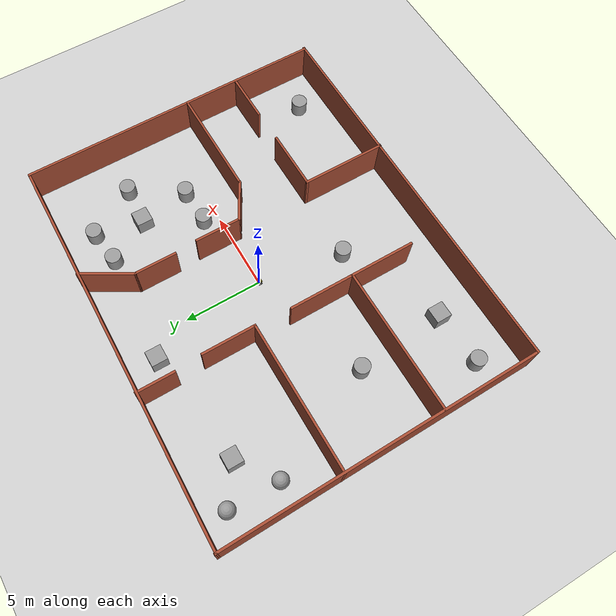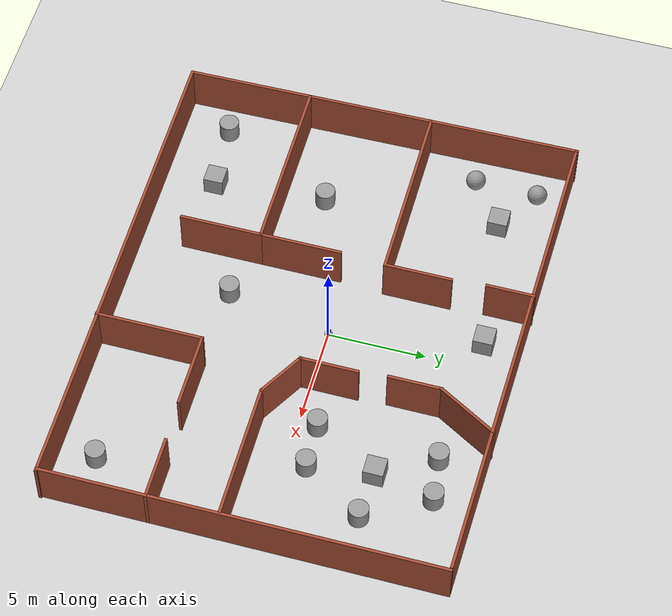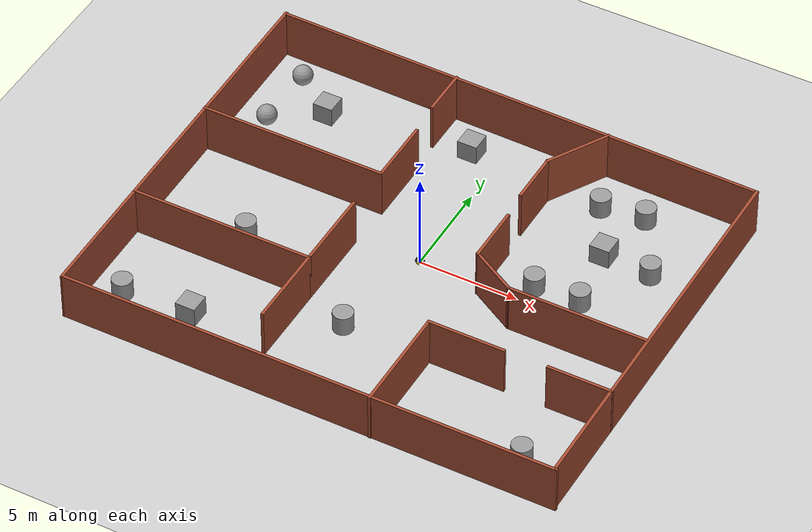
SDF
<sdf version="1.6">
 <world name="default">
  <light name="sun" type="directional">
   <pose>0 0 10 0 -0 0</pose>
   <diffuse>0.8 0.8 0.8 1</diffuse>
   <specular>0.2 0.2 0.2 1</specular>
   <attenuation>
    <range>1000</range>
    <constant>0.9</constant>
    <linear>0.01</linear>
    <quadratic>0.001</quadratic>
   </attenuation>
   <direction>-0.5 0.1 -0.9</direction>
  </light>
  <model name="ground_plane">
   <static>1</static>
   <link name="link">
    <collision name="collision">
     <geometry><plane><normal>0 0 1</normal><size>100 100</size></plane></geometry>
     <surface>
      <contact><collide_bitmask>65535</collide_bitmask></contact>
      <friction><ode><mu>100</mu><mu2>50</mu2></ode></friction>
     </surface>
    </collision>
    <visual name="visual">
     <cast_shadows>0</cast_shadows>
     <geometry><plane><normal>0 0 1</normal><size>100 100</size></plane></geometry>
     <material>
      <script><uri>file://media/materials/scripts/gazebo.material</uri><name>Gazebo/Grey</name></script>
     </material>
    </visual>
   </link>
  </model>
  <gravity>0 0 -9.8</gravity>
  <magnetic_field>6e-06 2.3e-05 -4.2e-05</magnetic_field>
  <atmosphere type="adiabatic"/>
  <physics name="default_physics" default="0" type="ode">
   <max_step_size>0.001</max_step_size>
   <real_time_factor>1</real_time_factor>
   <real_time_update_rate>1000</real_time_update_rate>
  </physics>
  <scene><ambient>0.4 0.4 0.4 1</ambient><background>0.7 0.7 0.7 1</background><shadows>1</shadows></scene>
  <audio><device>default</device></audio>
  <spherical_coordinates>
   <surface_model>EARTH_WGS84</surface_model>
   <latitude_deg>0</latitude_deg>
   <longitude_deg>0</longitude_deg>
   <elevation>0</elevation>
   <heading_deg>0</heading_deg>
  </spherical_coordinates>
  <model name="test2">
   <pose>-0.0329 -0.526272 0 0 -0 0</pose>
   <link name="Wall_0">
    <collision name="Wall_0_Collision">
     <geometry><box><size>20.5677 0.15 2.5</size></box></geometry>
     <pose>0 0 1.25 0 -0 0</pose>
    </collision>
    <visual name="Wall_0_Visual">
     <pose>0 0 1.25 0 -0 0</pose>
     <geometry><box><size>20.5677 0.15 2.5</size></box></geometry>
     <material>
      <script><uri>file://media/materials/scripts/gazebo.material</uri><name>Gazebo/Bricks</name></script>
      <ambient>1 1 1 1</ambient>
     </material>
     <meta><layer>0</layer></meta>
    </visual>
    <pose>-12.4244 0.000995 0 0 -0 1.58303</pose>
   </link>
   <link name="Wall_11">
    <collision name="Wall_11_Collision">
     <geometry><box><size>3.5 0.15 2.5</size></box></geometry>
     <pose>0 0 1.25 0 -0 0</pose>
    </collision>
    <visual name="Wall_11_Visual">
     <pose>0 0 1.25 0 -0 0</pose>
     <geometry><box><size>3.5 0.15 2.5</size></box></geometry>
     <material>
      <script><uri>file://media/materials/scripts/gazebo.material</uri><name>Gazebo/Bricks</name></script>
      <ambient>1 1 1 1</ambient>
     </material>
     <meta><layer>0</layer></meta>
    </visual>
    <pose>-3.11259 4.23801 0 0 -0 1.5708</pose>
   </link>
   <link name="Wall_14">
    <collision name="Wall_14_Collision">
     <geometry><box><size>9.5 0.15 2.5</size></box></geometry>
     <pose>0 0 1.25 0 -0 0</pose>
    </collision>
    <visual name="Wall_14_Visual">
     <pose>0 0 1.25 0 -0 0</pose>
     <geometry><box><size>9.5 0.15 2.5</size></box></geometry>
     <material>
      <script><uri>file://media/materials/scripts/gazebo.material</uri><name>Gazebo/Bricks</name></script>
      <ambient>1 1 1 1</ambient>
     </material>
     <meta><layer>0</layer></meta>
    </visual>
    <pose>-7.78759 2.563 0 0 -0 3.14159</pose>
   </link>
   <link name="Wall_16">
    <collision name="Wall_16_Collision">
     <geometry><box><size>2.5 0.15 2.5</size></box></geometry>
     <pose>0 0 1.25 0 -0 0</pose>
    </collision>
    <visual name="Wall_16_Visual">
     <pose>0 0 1.25 0 -0 0</pose>
     <geometry><box><size>2.5 0.15 2.5</size></box></geometry>
     <material>
      <script><uri>file://media/materials/scripts/gazebo.material</uri><name>Gazebo/Bricks</name></script>
      <ambient>1 1 1 1</ambient>
     </material>
     <meta><layer>0</layer></meta>
    </visual>
    <pose>-3.24691 8.87494 0 0 -0 -1.5708</pose>
   </link>
   <link name="Wall_18">
    <collision name="Wall_18_Collision">
     <geometry><box><size>9.25 0.15 2.5</size></box></geometry>
     <pose>0 0 1.25 0 -0 0</pose>
    </collision>
    <visual name="Wall_18_Visual">
     <pose>0 0 1.25 0 -0 0</pose>
     <geometry><box><size>9.25 0.15 2.5</size></box></geometry>
     <material>
      <script><uri>file://media/materials/scripts/gazebo.material</uri><name>Gazebo/Bricks</name></script>
      <ambient>1 1 1 1</ambient>
     </material>
     <meta><layer>0</layer></meta>
    </visual>
    <pose>-7.79234 -3.86071 0 0 -0 0</pose>
   </link>
   <link name="Wall_19">
    <collision name="Wall_19_Collision">
     <geometry><box><size>4.25 0.15 2.5</size></box></geometry>
     <pose>0 0 1.25 0 -0 0</pose>
    </collision>
    <visual name="Wall_19_Visual">
     <pose>0 0 1.25 0 -0 0</pose>
     <geometry><box><size>4.25 0.15 2.5</size></box></geometry>
     <material>
      <script><uri>file://media/materials/scripts/gazebo.material</uri><name>Gazebo/Bricks</name></script>
      <ambient>1 1 1 1</ambient>
     </material>
     <meta><layer>0</layer></meta>
    </visual>
    <pose>-3.24234 -1.81071 0 0 -0 1.5708</pose>
   </link>
   <link name="Wall_21">
    <collision name="Wall_21_Collision">
     <geometry><box><size>4.25 0.15 2.5</size></box></geometry>
     <pose>0 0 1.25 0 -0 0</pose>
    </collision>
    <visual name="Wall_21_Visual">
     <pose>0 0 1.25 0 -0 0</pose>
     <geometry><box><size>4.25 0.15 2.5</size></box></geometry>
     <material>
      <script><uri>file://media/materials/scripts/gazebo.material</uri><name>Gazebo/Bricks</name></script>
      <ambient>1 1 1 1</ambient>
     </material>
     <meta><layer>0</layer></meta>
    </visual>
    <pose>-3.24234 -5.91071 0 0 -0 -1.5708</pose>
   </link>
   <link name="Wall_23">
    <collision name="Wall_23_Collision">
     <geometry><box><size>3.5 0.15 2.5</size></box></geometry>
     <pose>0 0 1.25 0 -0 0</pose>
    </collision>
    <visual name="Wall_23_Visual">
     <pose>0 0 1.25 0 -0 0</pose>
     <geometry><box><size>3.5 0.15 2.5</size></box></geometry>
     <material>
      <script><uri>file://media/materials/scripts/gazebo.material</uri><name>Gazebo/Bricks</name></script>
      <ambient>1 1 1 1</ambient>
     </material>
     <meta><layer>0</layer></meta>
    </visual>
    <pose>3.99446 8.43884 0 0 -0 -2.0944</pose>
   </link>
   <link name="Wall_24">
    <collision name="Wall_24_Collision">
     <geometry><box><size>2.75 0.15 2.5</size></box></geometry>
     <pose>0 0 1.25 0 -0 0</pose>
    </collision>
    <visual name="Wall_24_Visual">
     <pose>0 0 1.25 0 -0 0</pose>
     <geometry><box><size>2.75 0.15 2.5</size></box></geometry>
     <material>
      <script><uri>file://media/materials/scripts/gazebo.material</uri><name>Gazebo/Bricks</name></script>
      <ambient>1 1 1 1</ambient>
     </material>
     <meta><layer>0</layer></meta>
    </visual>
    <pose>3.15696 5.68825 0 0 -0 -1.5708</pose>
   </link>
   <link name="Wall_26">
    <collision name="Wall_26_Collision">
     <geometry><box><size>3 0.15 2.5</size></box></geometry>
     <pose>0 0 1.25 0 -0 0</pose>
    </collision>
    <visual name="Wall_26_Visual">
     <pose>0 0 1.25 0 -0 0</pose>
     <geometry><box><size>3 0.15 2.5</size></box></geometry>
     <material>
      <script><uri>file://media/materials/scripts/gazebo.material</uri><name>Gazebo/Bricks</name></script>
      <ambient>1 1 1 1</ambient>
     </material>
     <meta><layer>0</layer></meta>
    </visual>
    <pose>3.28039 1.4556 0 0 -0 -1.5708</pose>
   </link>
   <link name="Wall_27">
    <collision name="Wall_27_Collision">
     <geometry><box><size>2.75 0.15 2.5</size></box></geometry>
     <pose>0 0 1.25 0 -0 0</pose>
    </collision>
    <visual name="Wall_27_Visual">
     <pose>0 0 1.25 0 -0 0</pose>
     <geometry><box><size>2.75 0.15 2.5</size></box></geometry>
     <material>
      <script><uri>file://media/materials/scripts/gazebo.material</uri><name>Gazebo/Bricks</name></script>
      <ambient>1 1 1 1</ambient>
     </material>
     <meta><layer>0</layer></meta>
    </visual>
    <pose>4.40622 -0.619397 0 0 -0 -0.523599</pose>
   </link>
   <link name="Wall_28">
    <collision name="Wall_28_Collision">
     <geometry><box><size>7 0.15 2.5</size></box></geometry>
     <pose>0 0 1.25 0 -0 0</pose>
    </collision>
    <visual name="Wall_28_Visual">
     <pose>0 0 1.25 0 -0 0</pose>
     <geometry><box><size>7 0.15 2.5</size></box></geometry>
     <material>
      <script><uri>file://media/materials/scripts/gazebo.material</uri><name>Gazebo/Bricks</name></script>
      <ambient>1 1 1 1</ambient>
     </material>
     <meta><layer>0</layer></meta>
    </visual>
    <pose>8.95706 -1.2694 0 0 -0 0</pose>
   </link>
   <link name="Wall_31">
    <collision name="Wall_31_Collision">
     <geometry><box><size>3.89299 0.15 2.5</size></box></geometry>
     <pose>0 0 1.25 0 -0 0</pose>
    </collision>
    <visual name="Wall_31_Visual">
     <pose>0 0 1.25 0 -0 0</pose>
     <geometry><box><size>3.89299 0.15 2.5</size></box></geometry>
     <material>
      <script><uri>file://media/materials/scripts/gazebo.material</uri><name>Gazebo/Bricks</name></script>
      <ambient>1 1 1 1</ambient>
     </material>
     <meta><layer>0</layer></meta>
    </visual>
    <pose>5.3124 -4.86 0 0 -0 0</pose>
   </link>
   <link name="Wall_34">
    <collision name="Wall_34_Collision">
     <geometry><box><size>3.25 0.15 2.5</size></box></geometry>
     <pose>0 0 1.25 0 -0 0</pose>
    </collision>
    <visual name="Wall_34_Visual">
     <pose>0 0 1.25 0 -0 0</pose>
     <geometry><box><size>3.25 0.15 2.5</size></box></geometry>
     <material>
      <script><uri>file://media/materials/scripts/gazebo.material</uri><name>Gazebo/Bricks</name></script>
      <ambient>1 1 1 1</ambient>
     </material>
     <meta><layer>0</layer></meta>
    </visual>
    <pose>10.9328 -4.82376 0 0 -0 3.14159</pose>
   </link>
   <link name="Wall_36">
    <collision name="Wall_36_Collision">
     <geometry><box><size>5.5 0.15 2.5</size></box></geometry>
     <pose>0 0 1.25 0 -0 0</pose>
    </collision>
    <visual name="Wall_36_Visual">
     <pose>0 0 1.25 0 -0 0</pose>
     <geometry><box><size>5.5 0.15 2.5</size></box></geometry>
     <material>
      <script><uri>file://media/materials/scripts/gazebo.material</uri><name>Gazebo/Bricks</name></script>
      <ambient>1 1 1 1</ambient>
     </material>
     <meta><layer>0</layer></meta>
    </visual>
    <pose>3.4409 -7.535 0 0 -0 -1.5708</pose>
   </link>
   <link name="Wall_4">
    <collision name="Wall_4_Collision">
     <geometry><box><size>20.006 0.15 2.5</size></box></geometry>
     <pose>0 0 1.25 0 -0 0</pose>
    </collision>
    <visual name="Wall_4_Visual">
     <pose>0 0 1.25 0 -0 0</pose>
     <geometry><box><size>20.006 0.15 2.5</size></box></geometry>
     <material>
      <script><uri>file://media/materials/scripts/gazebo.material</uri><name>Gazebo/Bricks</name></script>
      <ambient>1 1 1 1</ambient>
     </material>
     <meta><layer>0</layer></meta>
    </visual>
    <pose>12.4762 -0.198987 0 0 -0 -1.5708</pose>
   </link>
   <link name="Wall_6">
    <collision name="Wall_6_Collision">
     <geometry><box><size>25 0.15 2.5</size></box></geometry>
     <pose>0 0 1.25 0 -0 0</pose>
    </collision>
    <visual name="Wall_6_Visual">
     <pose>0 0 1.25 0 -0 0</pose>
     <geometry><box><size>25 0.15 2.5</size></box></geometry>
     <material>
      <script><uri>file://media/materials/scripts/gazebo.material</uri><name>Gazebo/Bricks</name></script>
      <ambient>1 1 1 1</ambient>
     </material>
     <meta><layer>0</layer></meta>
    </visual>
    <pose>0.12548 -10.1838 0 0 -0 0.001872</pose>
   </link>
   <link name="Wall_8">
    <collision name="Wall_8_Collision">
     <geometry><box><size>25 0.15 2.5</size></box></geometry>
     <pose>0 0 1.25 0 -0 0</pose>
    </collision>
    <visual name="Wall_8_Visual">
     <pose>0 0 1.25 0 -0 0</pose>
     <geometry><box><size>25 0.15 2.5</size></box></geometry>
     <material>
      <script><uri>file://media/materials/scripts/gazebo.material</uri><name>Gazebo/Bricks</name></script>
      <ambient>1 1 1 1</ambient>
     </material>
     <meta><layer>0</layer></meta>
    </visual>
    <pose>-0.126226 9.94892 0 0 -0 -0.017684</pose>
   </link>
   <static>1</static>
  </model>
  <model name="unit_box">
   <pose>-7.35182 -8.01966 0.5 0 -0 1e-06</pose>
   <link name="link">
    <inertial>
     <mass>1</mass>
     <inertia>
      <ixx>0.166667</ixx>
      <ixy>0</ixy>
      <ixz>0</ixz>
      <iyy>0.166667</iyy>
      <iyz>0</iyz>
      <izz>0.166667</izz>
     </inertia>
    </inertial>
    <collision name="collision"><geometry><box><size>1 1 1</size></box></geometry></collision>
    <visual name="visual">
     <geometry><box><size>1 1 1</size></box></geometry>
     <material>
      <script><name>Gazebo/Grey</name><uri>file://media/materials/scripts/gazebo.material</uri></script>
     </material>
    </visual>
   </link>
  </model>
  <model name="unit_cylinder">
   <pose>-7.82317 -2.29785 0.499991 -0 -0 -9e-06</pose>
   <link name="link">
    <inertial>
     <mass>1</mass>
     <inertia><ixx>0.145833</ixx><ixy>0</ixy><ixz>0</ixz><iyy>0.145833</iyy><iyz>0</iyz><izz>0.125</izz></inertia>
    </inertial>
    <collision name="collision">
     <geometry><cylinder><radius>0.5</radius><length>1</length></cylinder></geometry>
    </collision>
    <visual name="visual">
     <geometry><cylinder><radius>0.5</radius><length>1</length></cylinder></geometry>
     <material>
      <script><name>Gazebo/Grey</name><uri>file://media/materials/scripts/gazebo.material</uri></script>
     </material>
    </visual>
   </link>
  </model>
  <model name="unit_box_0">
   <pose>-8.60514 6.62494 0.5 -0 -0 -0</pose>
   <link name="link">
    <inertial>
     <mass>1</mass>
     <inertia>
      <ixx>0.166667</ixx>
      <ixy>0</ixy>
      <ixz>0</ixz>
      <iyy>0.166667</iyy>
      <iyz>0</iyz>
      <izz>0.166667</izz>
     </inertia>
    </inertial>
    <collision name="collision"><geometry><box><size>1 1 1</size></box></geometry></collision>
    <visual name="visual">
     <geometry><box><size>1 1 1</size></box></geometry>
     <material>
      <script><name>Gazebo/Grey</name><uri>file://media/materials/scripts/gazebo.material</uri></script>
     </material>
    </visual>
   </link>
  </model>
  <model name="unit_cylinder_0">
   <pose>5.63441 7.02352 0.499991 0 -0 1.1e-05</pose>
   <link name="link">
    <inertial>
     <mass>1</mass>
     <inertia><ixx>0.145833</ixx><ixy>0</ixy><ixz>0</ixz><iyy>0.145833</iyy><iyz>0</iyz><izz>0.125</izz></inertia>
    </inertial>
    <collision name="collision">
     <geometry><cylinder><radius>0.5</radius><length>1</length></cylinder></geometry>
    </collision>
    <visual name="visual">
     <geometry><cylinder><radius>0.5</radius><length>1</length></cylinder></geometry>
     <material>
      <script><name>Gazebo/Grey</name><uri>file://media/materials/scripts/gazebo.material</uri></script>
     </material>
    </visual>
   </link>
  </model>
  <model name="unit_cylinder_1">
   <pose>5.37544 0.948323 0.499991 -0 -0 -2e-06</pose>
   <link name="link">
    <inertial>
     <mass>1</mass>
     <inertia><ixx>0.145833</ixx><ixy>0</ixy><ixz>0</ixz><iyy>0.145833</iyy><iyz>0</iyz><izz>0.125</izz></inertia>
    </inertial>
    <collision name="collision">
     <geometry><cylinder><radius>0.5</radius><length>1</length></cylinder></geometry>
    </collision>
    <visual name="visual">
     <geometry><cylinder><radius>0.5</radius><length>1</length></cylinder></geometry>
     <material>
      <script><name>Gazebo/Grey</name><uri>file://media/materials/scripts/gazebo.material</uri></script>
     </material>
    </visual>
   </link>
  </model>
  <model name="unit_cylinder_2">
   <pose>7.82124 7.31045 0.5 0 -0 4e-06</pose>
   <link name="link">
    <inertial>
     <mass>1</mass>
     <inertia><ixx>0.145833</ixx><ixy>0</ixy><ixz>0</ixz><iyy>0.145833</iyy><iyz>0</iyz><izz>0.125</izz></inertia>
    </inertial>
    <collision name="collision">
     <geometry><cylinder><radius>0.5</radius><length>1</length></cylinder></geometry>
    </collision>
    <visual name="visual">
     <geometry><cylinder><radius>0.5</radius><length>1</length></cylinder></geometry>
     <material>
      <script><name>Gazebo/Grey</name><uri>file://media/materials/scripts/gazebo.material</uri></script>
     </material>
    </visual>
   </link>
  </model>
  <model name="unit_cylinder_3">
   <pose>7.66606 1.01836 0.5 0 -0 4e-06</pose>
   <link name="link">
    <inertial>
     <mass>1</mass>
     <inertia><ixx>0.145833</ixx><ixy>0</ixy><ixz>0</ixz><iyy>0.145833</iyy><iyz>0</iyz><izz>0.125</izz></inertia>
    </inertial>
    <collision name="collision">
     <geometry><cylinder><radius>0.5</radius><length>1</length></cylinder></geometry>
    </collision>
    <visual name="visual">
     <geometry><cylinder><radius>0.5</radius><length>1</length></cylinder></geometry>
     <material>
      <script><name>Gazebo/Grey</name><uri>file://media/materials/scripts/gazebo.material</uri></script>
     </material>
    </visual>
   </link>
  </model>
  <model name="unit_cylinder_4">
   <pose>9.64974 4.13685 0.5 0 -0 6e-06</pose>
   <link name="link">
    <inertial>
     <mass>1</mass>
     <inertia><ixx>0.145833</ixx><ixy>0</ixy><ixz>0</ixz><iyy>0.145833</iyy><iyz>0</iyz><izz>0.125</izz></inertia>
    </inertial>
    <collision name="collision">
     <geometry><cylinder><radius>0.5</radius><length>1</length></cylinder></geometry>
    </collision>
    <visual name="visual">
     <geometry><cylinder><radius>0.5</radius><length>1</length></cylinder></geometry>
     <material>
      <script><name>Gazebo/Grey</name><uri>file://media/materials/scripts/gazebo.material</uri></script>
     </material>
    </visual>
   </link>
  </model>
  <model name="unit_sphere">
   <pose>-10.8161 8.15236 0.5 0 -0 0</pose>
   <link name="link">
    <inertial>
     <mass>1</mass>
     <inertia><ixx>0.1</ixx><ixy>0</ixy><ixz>0</ixz><iyy>0.1</iyy><iyz>0</iyz><izz>0.1</izz></inertia>
    </inertial>
    <collision name="collision"><geometry><sphere><radius>0.5</radius></sphere></geometry></collision>
    <visual name="visual">
     <geometry><sphere><radius>0.5</radius></sphere></geometry>
     <material>
      <script><name>Gazebo/Grey</name><uri>file://media/materials/scripts/gazebo.material</uri></script>
     </material>
    </visual>
   </link>
  </model>
  <model name="unit_sphere_0">
   <pose>-10.9028 4.90277 0.5 0 -0 0</pose>
   <link name="link">
    <inertial>
     <mass>1</mass>
     <inertia><ixx>0.1</ixx><ixy>0</ixy><ixz>0</ixz><iyy>0.1</iyy><iyz>0</iyz><izz>0.1</izz></inertia>
    </inertial>
    <collision name="collision"><geometry><sphere><radius>0.5</radius></sphere></geometry></collision>
    <visual name="visual">
     <geometry><sphere><radius>0.5</radius></sphere></geometry>
     <material>
      <script><name>Gazebo/Grey</name><uri>file://media/materials/scripts/gazebo.material</uri></script>
     </material>
    </visual>
   </link>
  </model>
  <model name="unit_cylinder_5">
   <pose>-0.974772 -5.37214 0.5 0 -0 8e-06</pose>
   <link name="link">
    <inertial>
     <mass>1</mass>
     <inertia><ixx>0.145833</ixx><ixy>0</ixy><ixz>0</ixz><iyy>0.145833</iyy><iyz>0</iyz><izz>0.125</izz></inertia>
    </inertial>
    <collision name="collision">
     <geometry><cylinder><radius>0.5</radius><length>1</length></cylinder></geometry>
    </collision>
    <visual name="visual">
     <geometry><cylinder><radius>0.5</radius><length>1</length></cylinder></geometry>
     <material>
      <script><name>Gazebo/Grey</name><uri>file://media/materials/scripts/gazebo.material</uri></script>
     </material>
    </visual>
   </link>
  </model>
  <model name="unit_box_1">
   <pose>-1.40349 7.58561 0.5 0 -0 1e-06</pose>
   <link name="link">
    <inertial>
     <mass>1</mass>
     <inertia>
      <ixx>0.166667</ixx>
      <ixy>0</ixy>
      <ixz>0</ixz>
      <iyy>0.166667</iyy>
      <iyz>0</iyz>
      <izz>0.166667</izz>
     </inertia>
    </inertial>
    <collision name="collision"><geometry><box><size>1 1 1</size></box></geometry></collision>
    <visual name="visual">
     <geometry><box><size>1 1 1</size></box></geometry>
     <material>
      <script><name>Gazebo/Grey</name><uri>file://media/materials/scripts/gazebo.material</uri></script>
     </material>
    </visual>
   </link>
  </model>
  <model name="unit_box_2">
   <pose>7.19881 4.29879 0.5 0 0 -1e-06</pose>
   <link name="link">
    <inertial>
     <mass>1</mass>
     <inertia>
      <ixx>0.166667</ixx>
      <ixy>0</ixy>
      <ixz>0</ixz>
      <iyy>0.166667</iyy>
      <iyz>0</iyz>
      <izz>0.166667</izz>
     </inertia>
    </inertial>
    <collision name="collision"><geometry><box><size>1 1 1</size></box></geometry></collision>
    <visual name="visual">
     <geometry><box><size>1 1 1</size></box></geometry>
     <material>
      <script><name>Gazebo/Grey</name><uri>file://media/materials/scripts/gazebo.material</uri></script>
     </material>
    </visual>
   </link>
  </model>
  <model name="unit_cylinder_6">
   <pose>-10.7724 -8.31136 0.499991 -0 -0 -2.8e-05</pose>
   <link name="link">
    <inertial>
     <mass>1</mass>
     <inertia><ixx>0.145833</ixx><ixy>0</ixy><ixz>0</ixz><iyy>0.145833</iyy><iyz>0</iyz><izz>0.125</izz></inertia>
    </inertial>
    <collision name="collision">
     <geometry><cylinder><radius>0.5</radius><length>1</length></cylinder></geometry>
    </collision>
    <visual name="visual">
     <geometry><cylinder><radius>0.5</radius><length>1</length></cylinder></geometry>
     <material>
      <script><name>Gazebo/Grey</name><uri>file://media/materials/scripts/gazebo.material</uri></script>
     </material>
    </visual>
   </link>
  </model>
  <model name="unit_cylinder_7">
   <pose>9.88926 -8.79059 0.5 0 0 -1.9e-05</pose>
   <link name="link">
    <inertial>
     <mass>1</mass>
     <inertia><ixx>0.145833</ixx><ixy>0</ixy><ixz>0</ixz><iyy>0.145833</iyy><iyz>0</iyz><izz>0.125</izz></inertia>
    </inertial>
    <collision name="collision">
     <geometry><cylinder><radius>0.5</radius><length>1</length></cylinder></geometry>
    </collision>
    <visual name="visual">
     <geometry><cylinder><radius>0.5</radius><length>1</length></cylinder></geometry>
     <material>
      <script><name>Gazebo/Grey</name><uri>file://media/materials/scripts/gazebo.material</uri></script>
     </material>
    </visual>
   </link>
  </model>
  <model name="spcbot">
   <link name="chassis">
    <inertial>
     <pose>0.027869 0 0.090164 0 -0 0</pose>
     <mass>6.1</mass>
     <inertia>
      <ixx>0.102912</ixx>
      <ixy>0</ixy>
      <ixz>0.00782787</ixz>
      <iyy>0.124674</iyy>
      <iyz>0</iyz>
      <izz>0.121764</izz>
     </inertia>
    </inertial>
    <collision name="chassis_fixed_joint_lump__collision_collision">
     <geometry><box><size>0.4 0.2 0.1</size></box></geometry>
    </collision>
    <collision name="chassis_fixed_joint_lump__caster_collision_collision_1">
     <pose>-0.15 0 -0.05 0 -0 0</pose>
     <geometry><sphere><radius>0.05</radius></sphere></geometry>
    </collision>
    <collision name="chassis_fixed_joint_lump__caster_front_collision_collision_2">
     <pose>0.15 0 -0.05 0 -0 0</pose>
     <geometry><sphere><radius>0.05</radius></sphere></geometry>
    </collision>
    <collision name="chassis_fixed_joint_lump__camera_link_collision_3">
     <pose>0.2 0 0 0 -0 0</pose>
     <geometry><box><size>0.05 0.05 0.05</size></box></geometry>
    </collision>
    <collision name="chassis_fixed_joint_lump__sensor_laser_collision_4">
     <pose>0.15 0 0.05 0 -0 0</pose>
     <geometry><cylinder><length>0.1</length><radius>0.05</radius></cylinder></geometry>
    </collision>
    <visual name="chassis_visual_visual">
     <geometry><box><size>0.4 0.2 0.1</size></box></geometry>
     <material>
      <script><name>Gazebo/Black</name><uri>file://media/materials/scripts/gazebo.material</uri></script>
     </material>
    </visual>
    <visual name="chassis_fixed_joint_lump__caster_visual_visual_1">
     <pose>-0.15 0 -0.05 0 -0 0</pose>
     <geometry><sphere><radius>0.05</radius></sphere></geometry>
    </visual>
    <visual name="chassis_fixed_joint_lump__caster_front_visual_visual_2">
     <pose>0.15 0 -0.05 0 -0 0</pose>
     <geometry><sphere><radius>0.05</radius></sphere></geometry>
    </visual>
    <visual name="chassis_fixed_joint_lump__camera_link_visual_3">
     <pose>0.2 0 0 0 -0 0</pose>
     <geometry><box><size>0.05 0.05 0.05</size></box></geometry>
     <material>
      <script><name>Gazebo/Green</name><uri>file://media/materials/scripts/gazebo.material</uri></script>
     </material>
    </visual>
    <visual name="chassis_fixed_joint_lump__sensor_laser_visual_4">
     <pose>0.15 0 0.05 0 -0 0</pose>
     <geometry><cylinder><length>0.1</length><radius>0.05</radius></cylinder></geometry>
     <material><script><uri>__default__</uri><name>__default__</name></script></material>
    </visual>
    <sensor name="camera" type="camera">
     <update_rate>30</update_rate>
     <visualize>0</visualize>
     <camera name="head">
      <horizontal_fov>1.39626</horizontal_fov>
      <image><width>800</width><height>800</height><format>R8G8B8</format></image>
      <clip><near>0.02</near><far>300</far></clip>
     </camera>
     <plugin name="camera_controller" filename="libgazebo_ros_camera.so">
      <alwaysOn>1</alwaysOn>
      <updateRate>0.0</updateRate>
      <cameraName>spcbot/camera</cameraName>
      <imageTopicName>image_raw</imageTopicName>
      <cameraInfoTopicName>camera_info</cameraInfoTopicName>
      <frameName>camera</frameName>
      <hackBaseline>0.07</hackBaseline>
      <distortionK1>0.0</distortionK1>
      <distortionK2>0.0</distortionK2>
      <distortionK3>0.0</distortionK3>
      <distortionT1>0.0</distortionT1>
      <distortionT2>0.0</distortionT2>
      <robotNamespace>/</robotNamespace>
     </plugin>
     <pose>0.2 0 0 0 -0 0</pose>
    </sensor>
    <sensor name="head_hokuyo_sensor" type="ray">
     <visualize>0</visualize>
     <update_rate>20</update_rate>
     <ray>
      <scan>
       <horizontal>
        <samples>720</samples>
        <resolution>1</resolution>
        <min_angle>-1.5708</min_angle>
        <max_angle>1.5708</max_angle>
       </horizontal>
       <vertical><samples>1</samples><min_angle>0</min_angle><max_angle>0</max_angle></vertical>
      </scan>
      <range><min>0.8</min><max>10</max><resolution>0.1</resolution></range>
      <noise><type>gaussian</type><mean>0</mean><stddev>0</stddev></noise>
     </ray>
     <plugin name="gazebo_ros_head_hokuyo_controller" filename="libgazebo_ros_laser.so">
      <topicName>/scan</topicName>
      <frameName>sensor_laser</frameName>
      <robotNamespace>/</robotNamespace>
     </plugin>
     <pose>0.15 0 0.05 0 -0 0</pose>
    </sensor>
   </link>
   <link name="left_wheel">
    <pose>0 0.15 0 0 -0 0</pose>
    <inertial>
     <pose>0 0 0 -0 1.5707 1.5707</pose>
     <mass>5</mass>
     <inertia><ixx>0.1</ixx><ixy>0</ixy><ixz>0</ixz><iyy>0.1</iyy><iyz>0</iyz><izz>0.1</izz></inertia>
    </inertial>
    <collision name="left_wheel_fixed_joint_lump__collision_collision">
     <pose>0 0 0 3.14159 1.57079 -1.57089</pose>
     <geometry><cylinder><length>0.05</length><radius>0.1</radius></cylinder></geometry>
    </collision>
    <visual name="left_wheel_visual_visual">
     <pose>0 0 0 3.14159 1.57079 -1.57089</pose>
     <geometry><cylinder><length>0.05</length><radius>0.1</radius></cylinder></geometry>
     <material>
      <script><name>Gazebo/Yellow</name><uri>file://media/materials/scripts/gazebo.material</uri></script>
     </material>
    </visual>
   </link>
   <joint name="left_wheel_hinge" type="revolute">
    <child>left_wheel</child>
    <parent>chassis</parent>
    <axis>
     <xyz>0 1 0</xyz>
     <limit><lower>-1e+16</lower><upper>1e+16</upper></limit>
     <dynamics><spring_reference>0</spring_reference><spring_stiffness>0</spring_stiffness></dynamics>
     <use_parent_model_frame>1</use_parent_model_frame>
    </axis>
   </joint>
   <link name="right_wheel">
    <pose>0 -0.15 0 0 -0 0</pose>
    <inertial>
     <pose>0 0 0 -0 1.5707 1.5707</pose>
     <mass>5</mass>
     <inertia><ixx>0.1</ixx><ixy>0</ixy><ixz>0</ixz><iyy>0.1</iyy><iyz>0</iyz><izz>0.1</izz></inertia>
    </inertial>
    <collision name="right_wheel_fixed_joint_lump__collision_collision">
     <pose>0 0 0 3.14159 1.57079 -1.57089</pose>
     <geometry><cylinder><length>0.05</length><radius>0.1</radius></cylinder></geometry>
    </collision>
    <visual name="right_wheel_visual_visual">
     <pose>0 0 0 3.14159 1.57079 -1.57089</pose>
     <geometry><cylinder><length>0.05</length><radius>0.1</radius></cylinder></geometry>
     <material>
      <script><name>Gazebo/Yellow</name><uri>file://media/materials/scripts/gazebo.material</uri></script>
     </material>
    </visual>
   </link>
   <joint name="right_wheel_hinge" type="revolute">
    <child>right_wheel</child>
    <parent>chassis</parent>
    <axis>
     <xyz>0 1 0</xyz>
     <limit><lower>-1e+16</lower><upper>1e+16</upper></limit>
     <dynamics><spring_reference>0</spring_reference><spring_stiffness>0</spring_stiffness></dynamics>
     <use_parent_model_frame>1</use_parent_model_frame>
    </axis>
   </joint>
   <static>0</static>
   <plugin name="differential_drive_controller" filename="libgazebo_ros_diff_drive.so">
    <legacyMode>0</legacyMode>
    <alwaysOn>1</alwaysOn>
    <updateRate>10</updateRate>
    <leftJoint>left_wheel_hinge</leftJoint>
    <rightJoint>right_wheel_hinge</rightJoint>
    <wheelSeparation>0.30</wheelSeparation>
    <wheelDiameter>0.2</wheelDiameter>
    <torque>30</torque>
    <commandTopic>cmd_vel</commandTopic>
    <odometryTopic>odom</odometryTopic>
    <odometryFrame>odom</odometryFrame>
    <robotBaseFrame>chassis</robotBaseFrame>
    <robotNamespace>/</robotNamespace>
   </plugin>
   <pose>-0.007494 0.00911 0.099998 -3e-06 -1e-05 0.068592</pose>
  </model>
 </world>
</sdf>
